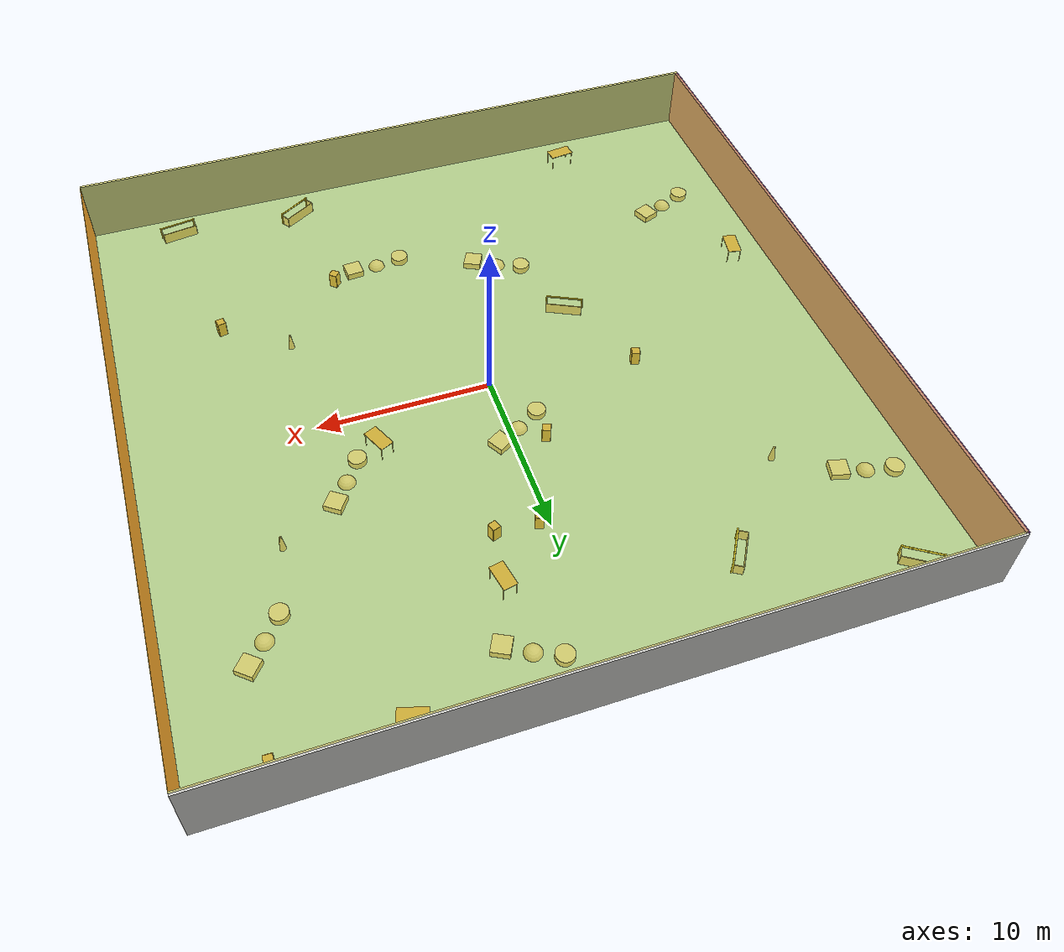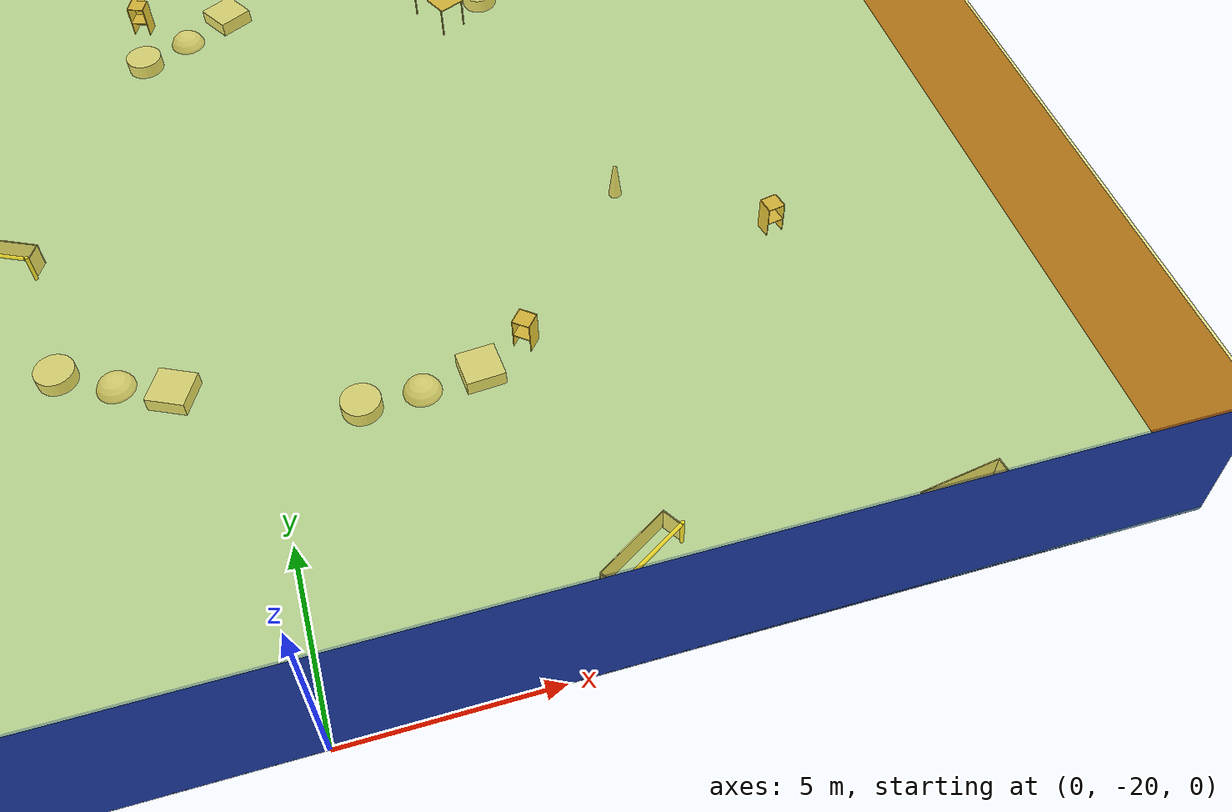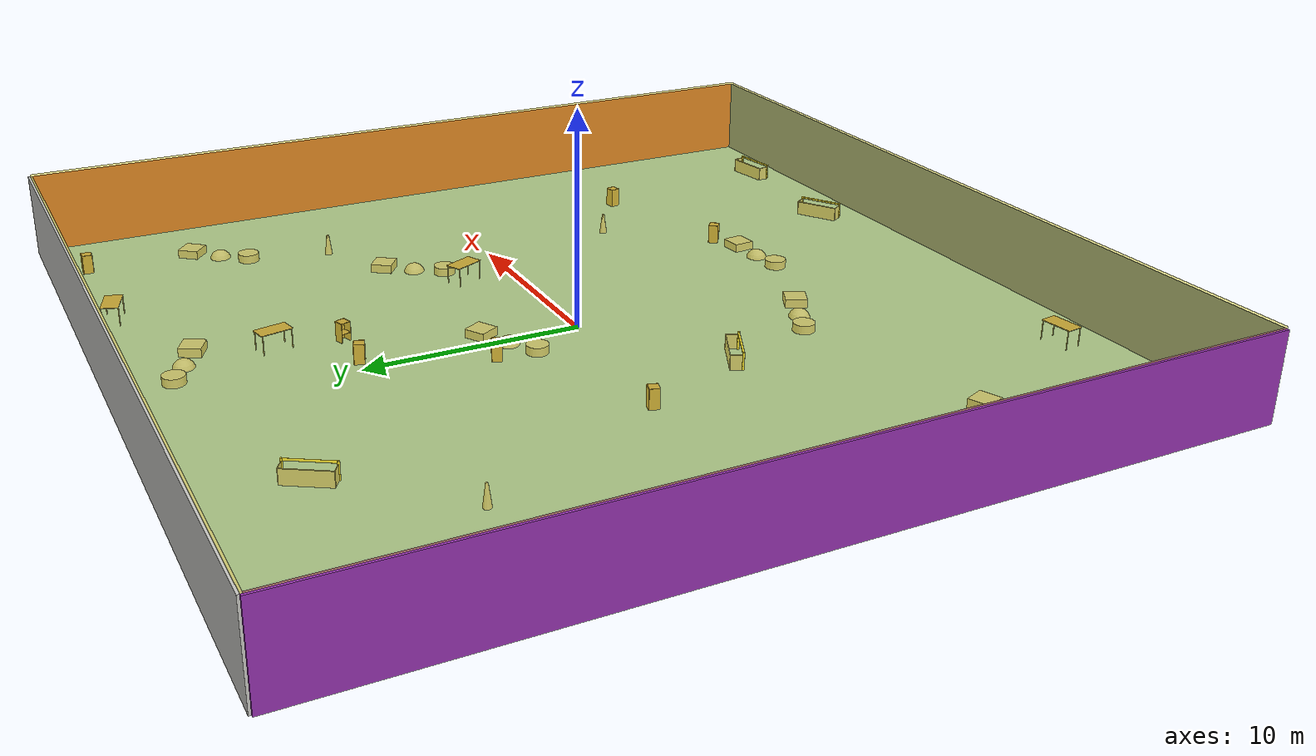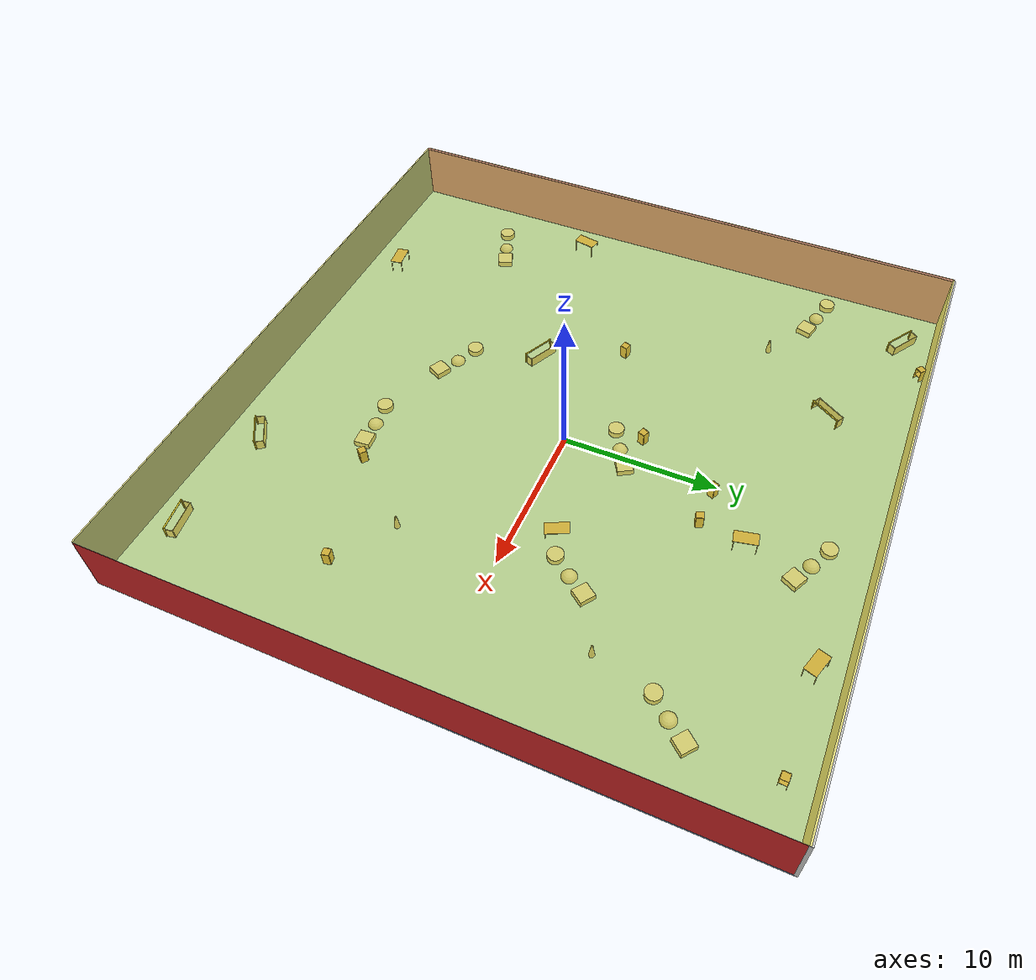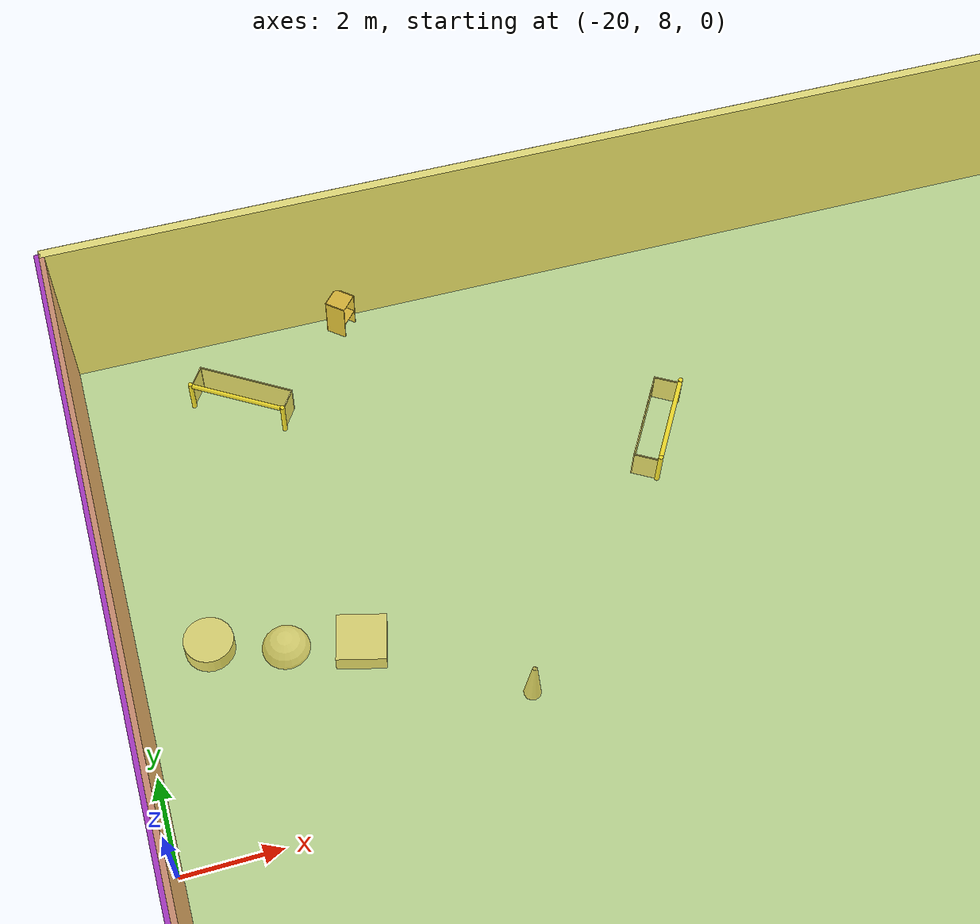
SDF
<sdf version="1.4">
 <world name="default">
  <physics type="ode">
   <max_step_size>0.001</max_step_size>
   <real_time_factor>1</real_time_factor>
   <real_time_update_rate>1000</real_time_update_rate>
   <gravity>0 0 -9.8</gravity>
  </physics>
  <scene><ambient>0.4 0.4 0.4 1</ambient><background>0.7 0.7 0.7 1</background><shadows>1</shadows></scene>
  <model name="Surrounding">
   <static>1</static>
   <link name="Ceiling">
    <collision name="Ceiling_Collision"><geometry><box><size>40 40 0.1</size></box></geometry></collision>
    <visual name="Ceiling_Visual">
     <geometry><box><size>40 40 0.1</size></box></geometry>
     <material>
      <script>
       <uri>file://media/materials/scripts/gazebo.material</uri>
       <name>Gazebo/YellowTransparent</name>
      </script>
     </material>
    </visual>
    <pose>0 0 4.05 0 0 0</pose>
   </link>
   <link name="Wall_South">
    <collision name="Wall_South_Collision">
     <geometry><box><size>40 0 4</size></box></geometry>
     <pose>0 0 2 0 -0 0</pose>
    </collision>
    <visual name="Wall_South_Visual">
     <pose>0 0 2 0 -0 0</pose>
     <geometry><box><size>40 0 4</size></box></geometry>
     <material>
      <script><uri>file://media/materials/scripts/gazebo.material</uri><name>Gazebo/Blue</name></script>
     </material>
    </visual>
    <velocity_decay><linear>0</linear><angular>0</angular></velocity_decay>
    <pose>0 -20 0 0 -0 0</pose>
   </link>
   <link name="Wall_East">
    <collision name="Wall_21_Collision">
     <geometry><box><size>40 0 4</size></box></geometry>
     <pose>0 0 2 0 -0 0</pose>
    </collision>
    <visual name="Wall_21_Visual">
     <pose>0 0 2 0 -0 0</pose>
     <geometry><box><size>40 0 4</size></box></geometry>
     <material>
      <script><uri>file://media/materials/scripts/gazebo.material</uri><name>Gazebo/Red</name></script>
     </material>
    </visual>
    <velocity_decay><linear>0</linear><angular>0</angular></velocity_decay>
    <pose>20 0 0 0 -0 1.5708</pose>
   </link>
   <link name="Wall_North">
    <collision name="Wall_22_Collision">
     <geometry><box><size>40 0.2 4</size></box></geometry>
     <pose>0 0 2 0 -0 0</pose>
    </collision>
    <visual name="Wall_22_Visual">
     <pose>0 0 2 0 -0 0</pose>
     <geometry><box><size>40 0.2 4</size></box></geometry>
     <material>
      <script><uri>file://media/materials/scripts/gazebo.material</uri><name>Gazebo/CeilingTiled</name></script>
     </material>
    </visual>
    <velocity_decay><linear>0</linear><angular>0</angular></velocity_decay>
    <pose>0 20 0 0 -0 0</pose>
   </link>
   <link name="Wall_West">
    <collision name="Wall_23_Collision">
     <geometry><box><size>40 0.2 4</size></box></geometry>
     <pose>0 0 2 0 -0 0</pose>
    </collision>
    <visual name="Wall_23_Visual">
     <pose>0 0 2 0 -0 0</pose>
     <geometry><box><size>40 0.2 4</size></box></geometry>
     <material>
      <script><uri>file://media/materials/scripts/gazebo.material</uri><name>Gazebo/PurpleGlow</name></script>
     </material>
    </visual>
    <velocity_decay><linear>0</linear><angular>0</angular></velocity_decay>
    <pose>-20 0 0 0 0 -1.5708</pose>
   </link>
   <link name="Ground_link">
    <collision name="collision">
     <pose>0 0 .05 0 -0 0</pose>
     <geometry><box><size>40 40 0.1</size></box></geometry>
    </collision>
    <visual name="visual">
     <pose>0 0 .05 0 -0 0</pose>
     <geometry><box><size>40 40 0.1</size></box></geometry>
     <material>
      <script><uri>file://media/materials/scripts/gazebo.material</uri><name>Gazebo/SkyBlue</name></script>
     </material>
    </visual>
   </link>
   <static>1</static>
  </model>
  <spherical_coordinates>
   <surface_model>EARTH_WGS84</surface_model>
   <latitude_deg>0</latitude_deg>
   <longitude_deg>0</longitude_deg>
   <elevation>0</elevation>
   <heading_deg>0</heading_deg>
  </spherical_coordinates>
  <light name="lightball_0" type="diffuse">
   <diffuse>0.8 0.8 0.8 1</diffuse>
   <specular>0.2 0.2 0.2 1</specular>
   <attenuation>
    <range>100</range>
    <constant>0.7</constant>
    <linear>0.01</linear>
    <quadratic>0.001</quadratic>
   </attenuation>
   <direction>-0.5 0.1 -0.9</direction>
   <pose>-19.8112931699 -12.3471174352 1.54266042244 0 0 0</pose>
  </light>
  <light name="lightball_1" type="diffuse">
   <diffuse>0.8 0.8 0.8 1</diffuse>
   <specular>0.2 0.2 0.2 1</specular>
   <attenuation>
    <range>100</range>
    <constant>0.7</constant>
    <linear>0.01</linear>
    <quadratic>0.001</quadratic>
   </attenuation>
   <direction>-0.5 0.1 -0.9</direction>
   <pose>-6.931557891 -0.785672985255 1.60939052667 0 0 0</pose>
  </light>
  <light name="lightball_2" type="diffuse">
   <diffuse>0.8 0.8 0.8 1</diffuse>
   <specular>0.2 0.2 0.2 1</specular>
   <attenuation>
    <range>100</range>
    <constant>0.7</constant>
    <linear>0.01</linear>
    <quadratic>0.001</quadratic>
   </attenuation>
   <direction>-0.5 0.1 -0.9</direction>
   <pose>6.24930435053 -5.14676546822 3.22471741044 0 0 0</pose>
  </light>
  <light name="lightball_3" type="diffuse">
   <diffuse>0.8 0.8 0.8 1</diffuse>
   <specular>0.2 0.2 0.2 1</specular>
   <attenuation>
    <range>100</range>
    <constant>0.7</constant>
    <linear>0.01</linear>
    <quadratic>0.001</quadratic>
   </attenuation>
   <direction>-0.5 0.1 -0.9</direction>
   <pose>-7.78562876364 -14.2311823938 0.740889571333 0 0 0</pose>
  </light>
  <light name="lightball_4" type="diffuse">
   <diffuse>0.8 0.8 0.8 1</diffuse>
   <specular>0.2 0.2 0.2 1</specular>
   <attenuation>
    <range>100</range>
    <constant>0.7</constant>
    <linear>0.01</linear>
    <quadratic>0.001</quadratic>
   </attenuation>
   <direction>-0.5 0.1 -0.9</direction>
   <pose>11.4539937914 -19.2354112511 2.60857485822 0 0 0</pose>
  </light>
  <light name="lightball_5" type="diffuse">
   <diffuse>0.8 0.8 0.8 1</diffuse>
   <specular>0.2 0.2 0.2 1</specular>
   <attenuation>
    <range>100</range>
    <constant>0.7</constant>
    <linear>0.01</linear>
    <quadratic>0.001</quadratic>
   </attenuation>
   <direction>-0.5 0.1 -0.9</direction>
   <pose>-17.7053203632 10.0136013086 2.20291931713 0 0 0</pose>
  </light>
  <light name="lightball_6" type="diffuse">
   <diffuse>0.8 0.8 0.8 1</diffuse>
   <specular>0.2 0.2 0.2 1</specular>
   <attenuation>
    <range>100</range>
    <constant>0.7</constant>
    <linear>0.01</linear>
    <quadratic>0.001</quadratic>
   </attenuation>
   <direction>-0.5 0.1 -0.9</direction>
   <pose>4.10701436843 -2.36665118086 0.692865983168 0 0 0</pose>
  </light>
  <light name="lightball_7" type="diffuse">
   <diffuse>0.8 0.8 0.8 1</diffuse>
   <specular>0.2 0.2 0.2 1</specular>
   <attenuation>
    <range>100</range>
    <constant>0.7</constant>
    <linear>0.01</linear>
    <quadratic>0.001</quadratic>
   </attenuation>
   <direction>-0.5 0.1 -0.9</direction>
   <pose>-1.81097225094 -17.0038567095 1.79766830726 0 0 0</pose>
  </light>
  <light name="lightball_8" type="diffuse">
   <diffuse>0.8 0.8 0.8 1</diffuse>
   <specular>0.2 0.2 0.2 1</specular>
   <attenuation>
    <range>100</range>
    <constant>0.7</constant>
    <linear>0.01</linear>
    <quadratic>0.001</quadratic>
   </attenuation>
   <direction>-0.5 0.1 -0.9</direction>
   <pose>-13.9218556418 16.90249561 1.76272127357 0 0 0</pose>
  </light>
  <light name="lightball_9" type="diffuse">
   <diffuse>0.8 0.8 0.8 1</diffuse>
   <specular>0.2 0.2 0.2 1</specular>
   <attenuation>
    <range>100</range>
    <constant>0.7</constant>
    <linear>0.01</linear>
    <quadratic>0.001</quadratic>
   </attenuation>
   <direction>-0.5 0.1 -0.9</direction>
   <pose>-6.44497664084 -2.71739411514 2.19772203722 0 0 0</pose>
  </light>
  <light name="lightball_10" type="diffuse">
   <diffuse>0.8 0.8 0.8 1</diffuse>
   <specular>0.2 0.2 0.2 1</specular>
   <attenuation>
    <range>100</range>
    <constant>0.7</constant>
    <linear>0.01</linear>
    <quadratic>0.001</quadratic>
   </attenuation>
   <direction>-0.5 0.1 -0.9</direction>
   <pose>8.84004179469 15.712994669 1.7242139642 0 0 0</pose>
  </light>
  <light name="lightball_11" type="diffuse">
   <diffuse>0.8 0.8 0.8 1</diffuse>
   <specular>0.2 0.2 0.2 1</specular>
   <attenuation>
    <range>100</range>
    <constant>0.7</constant>
    <linear>0.01</linear>
    <quadratic>0.001</quadratic>
   </attenuation>
   <direction>-0.5 0.1 -0.9</direction>
   <pose>16.5927628996 18.747051674 2.65038603471 0 0 0</pose>
  </light>
  <light name="lightball_12" type="diffuse">
   <diffuse>0.8 0.8 0.8 1</diffuse>
   <specular>0.2 0.2 0.2 1</specular>
   <attenuation>
    <range>100</range>
    <constant>0.7</constant>
    <linear>0.01</linear>
    <quadratic>0.001</quadratic>
   </attenuation>
   <direction>-0.5 0.1 -0.9</direction>
   <pose>-18.5173151046 -4.84538939786 2.72664107131 0 0 0</pose>
  </light>
  <include><uri>model://table</uri><pose>-17.7593512054 -5.78041254641 0 0 0 1.38322506304</pose></include>
  <include>
   <uri>model://textured_shapes</uri>
   <pose>-17.0400405087 11.9961092672 0 0 0 1.31222335812</pose>
  </include>
  <include>
   <uri>model://robocup_3Dsim_goal</uri>
   <pose>-16.7408617263 17.7546434674 0 0 0 0.992802630707</pose>
  </include>
  <include>
   <uri>model://textured_shapes</uri>
   <pose>-15.5880079518 -11.4216624431 0 0 0 1.95099387495</pose>
  </include>
  <include><uri>model://cabinet</uri><pose>-13.9837912596 19.6208410551 0 0 0 2.41912587527</pose></include>
  <include><uri>model://table</uri><pose>-10.7966958167 -17.8329162336 0 0 0 0.128835828044</pose></include>
  <include>
   <uri>model://construction_cone</uri>
   <pose>-12.6533735788 9.71792246589 0 0 0 1.15707198367</pose>
  </include>
  <include><uri>model://cabinet</uri><pose>-8.462425228 0.85424727999 0 0 0 1.28829321708</pose></include>
  <include>
   <uri>model://robocup_3Dsim_goal</uri>
   <pose>-8.02416341983 14.6312671626 0 0 0 2.5833569834</pose>
  </include>
  <include>
   <uri>model://robocup_3Dsim_goal</uri>
   <pose>-6.17754429431 -4.58994318835 0 0 0 1.11819498691</pose>
  </include>
  <include>
   <uri>model://textured_shapes</uri>
   <pose>-3.48669876793 -9.33414498489 0 0 0 1.10974489583</pose>
  </include>
  <include><uri>model://cabinet</uri><pose>-1.6893721577 4.61591681971 0 0 0 1.19453598258</pose></include>
  <include>
   <uri>model://textured_shapes</uri>
   <pose>-0.483381897511 3.54444892017 0 0 0 2.09869047156</pose>
  </include>
  <include><uri>model://cabinet</uri><pose>0.588463634299 9.8927139876 0 0 0 1.18989845407</pose></include>
  <include>
   <uri>model://textured_shapes</uri>
   <pose>3.64072617609 -11.5924620786 0 0 0 1.65069556445</pose>
  </include>
  <include><uri>model://cabinet</uri><pose>2.99004020819 9.81936088511 0 0 0 0.336087109473</pose></include>
  <include><uri>model://table</uri><pose>3.4962764695 12.7360396639 0 0 0 1.76781983444</pose></include>
  <include>
   <uri>model://textured_shapes</uri>
   <pose>3.32169606639 16.6389213041 0 0 0 1.09723366761</pose>
  </include>
  <include>
   <uri>model://robocup_3Dsim_goal</uri>
   <pose>7.4531624176 -17.9943095698 0 0 0 2.12870944544</pose>
  </include>
  <include><uri>model://cabinet</uri><pose>6.43646502012 -10.8147193454 0 0 0 0.88324180882</pose></include>
  <include><uri>model://table</uri><pose>7.09429895981 2.53189356881 0 0 0 2.00625559775</pose></include>
  <include>
   <uri>model://construction_cone</uri>
   <pose>10.0744091096 -6.38464228167 0 0 0 2.25867952588</pose>
  </include>
  <include>
   <uri>model://textured_shapes</uri>
   <pose>9.30645492763 4.22164747553 0 0 0 2.52147615934</pose>
  </include>
  <include><uri>model://table</uri><pose>9.62002337765 18.3429796801 0 0 0 2.82517503091</pose></include>
  <include><uri>model://cabinet</uri><pose>13.689091554 -8.82079242091 0 0 0 1.76365065015</pose></include>
  <include>
   <uri>model://construction_cone</uri>
   <pose>13.3287746308 7.22125875393 0 0 0 2.32224996315</pose>
  </include>
  <include>
   <uri>model://robocup_3Dsim_goal</uri>
   <pose>14.8705093884 -18.5681644098 0 0 0 1.7252824048</pose>
  </include>
  <include>
   <uri>model://textured_shapes</uri>
   <pose>15.1824802779 12.1623401214 0 0 0 2.45328087335</pose>
  </include>
  <include><uri>model://cabinet</uri><pose>16.0959602943 18.3499226531 0 0 0 3.10646344085</pose></include>
 </world>
</sdf>

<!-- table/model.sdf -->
<sdf version="1.5">
  <model name="table">
    <static>true</static>
    <link name="link">
      <collision name="surface">
        <pose>0 0 1.0 0 0 0</pose>
        <geometry>
          <box>
            <size>1.5 0.8 0.03</size>
          </box>
        </geometry>
        <surface>
          <friction>
            <ode>
              <mu>0.6</mu>
              <mu2>0.6</mu2>
            </ode>
          </friction>
        </surface>
      </collision>
      <visual name="visual1">
        <pose>0 0 1.0 0 0 0</pose>
        <geometry>
          <box>
            <size>1.5 0.8 0.03</size>
          </box>
        </geometry>
        <material>
          <script>
            <uri>model://media/materials/scripts/gazebo.material</uri>
            <name>Gazebo/Wood</name>
          </script>
        </material>
      </visual>
      <collision name="front_left_leg">
        <pose>0.68 0.38 0.5 0 0 0</pose>
        <geometry>
          <cylinder>
            <radius>0.02</radius>
            <length>1.0</length>
          </cylinder>
        </geometry>
      </collision>
      <visual name="front_left_leg">
        <pose>0.68 0.38 0.5 0 0 0</pose>
        <geometry>
          <cylinder>
            <radius>0.02</radius>
            <length>1.0</length>
          </cylinder>
        </geometry>
        <material>
          <script>
            <uri>model://media/materials/scripts/gazebo.material</uri>
            <name>Gazebo/Grey</name>
          </script>
        </material>
      </visual>
      <collision name="front_right_leg">
        <pose>0.68 -0.38 0.5 0 0 0</pose>
        <geometry>
          <cylinder>
            <radius>0.02</radius>
            <length>1.0</length>
          </cylinder>
        </geometry>
      </collision>
      <visual name="front_right_leg">
        <pose>0.68 -0.38 0.5 0 0 0</pose>
        <geometry>
          <cylinder>
            <radius>0.02</radius>
            <length>1.0</length>
          </cylinder>
        </geometry>
        <material>
          <script>
            <uri>model://media/materials/scripts/gazebo.material</uri>
            <name>Gazebo/Grey</name>
          </script>
        </material>
      </visual>
      <collision name="back_right_leg">
        <pose>-0.68 -0.38 0.5 0 0 0</pose>
        <geometry>
          <cylinder>
            <radius>0.02</radius>
            <length>1.0</length>
          </cylinder>
        </geometry>
      </collision>
      <visual name="back_right_leg">
        <pose>-0.68 -0.38 0.5 0 0 0</pose>
        <geometry>
          <cylinder>
            <radius>0.02</radius>
            <length>1.0</length>
          </cylinder>
        </geometry>
        <material>
          <script>
            <uri>model://media/materials/scripts/gazebo.material</uri>
            <name>Gazebo/Grey</name>
          </script>
        </material>
      </visual>
      <collision name="back_left_leg">
        <pose>-0.68 0.38 0.5 0 0 0</pose>
        <geometry>
          <cylinder>
            <radius>0.02</radius>
            <length>1.0</length>
          </cylinder>
        </geometry>
      </collision>
      <visual name="back_left_leg">
        <pose>-0.68 0.38 0.5 0 0 0</pose>
        <geometry>
          <cylinder>
            <radius>0.02</radius>
            <length>1.0</length>
          </cylinder>
        </geometry>
        <material>
          <script>
            <uri>model://media/materials/scripts/gazebo.material</uri>
            <name>Gazebo/Grey</name>
          </script>
        </material>
      </visual>
    </link>
  </model>
</sdf>

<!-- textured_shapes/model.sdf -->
<sdf version="1.6">
  <model name="textured_shapes">
    <pose>0 0 0.5 0 0 0</pose>
    <link name="box">
      <pose>0 -1.5 0 0 0 0</pose>
      <collision name="collision">
        <geometry>
          <box>
            <size>1 1 1</size>
          </box>
        </geometry>
      </collision>
      <visual name="visual">
        <geometry>
          <box>
            <size>1 1 1</size>
          </box>
        </geometry>
        <material>
          <script>
            <uri>model://../model_source/models/textured_shapes/materials/scripts</uri>
            <uri>model://../model_source/models/textured_shapes/materials/textures</uri>
            <name>TexturedShape/Squares</name>
          </script>
        </material>
      </visual>
    </link>
    <link name="sphere">
      <collision name="collision">
        <geometry>
          <sphere>
            <radius>0.5</radius>
          </sphere>
        </geometry>
      </collision>
      <visual name="visual">
        <geometry>
          <sphere>
            <radius>0.5</radius>
          </sphere>
        </geometry>
        <material>
          <script>
            <uri>model://../model_source/models/textured_shapes/materials/scripts</uri>
            <uri>model://../model_source/models/textured_shapes/materials/textures</uri>
            <name>TexturedShape/Squares</name>
          </script>
        </material>
      </visual>
    </link>
    <link name="cylinder">
      <pose>0 1.5 0 0 0 0</pose>
      <collision name="collision">
        <geometry>
          <cylinder>
            <radius>0.5</radius>
            <length>1</length>
          </cylinder>
        </geometry>
      </collision>
      <visual name="visual">
        <geometry>
          <cylinder>
            <radius>0.5</radius>
            <length>1</length>
          </cylinder>
        </geometry>
        <material>
          <script>
            <uri>model://../model_source/models/textured_shapes/materials/scripts</uri>
            <uri>model://../model_source/models/textured_shapes/materials/textures</uri>
            <name>TexturedShape/Squares</name>
          </script>
        </material>
      </visual>
    </link>
  </model>
</sdf>

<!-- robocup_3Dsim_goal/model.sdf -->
<sdf version="1.5">
  <model name="robocup_3d_goal">
    <static>true</static>
    <link name="left_post">
      <pose>0 1.05 0.45 0 0 0</pose>
      <collision name="collision">
        <geometry>
          <cylinder>
            <radius>0.05</radius>
            <length>0.9</length>
          </cylinder>
        </geometry>
      </collision>
      <visual name="visual">
        <geometry>
          <cylinder>
            <radius>0.05</radius>
            <length>0.9</length>
          </cylinder>
        </geometry>
        <material>
          <script>
            <uri>file://media/materials/scripts/gazebo.material</uri>
            <name>Gazebo/ZincYellow</name>
          </script>
        </material>
      </visual>
    </link>
    <link name="left_support_horiz_lower">
      <pose>0.30 1.05 0.01 0 0 0</pose>
      <collision name="collision">
        <geometry>
          <box>
            <size>0.50 0.02 0.02</size>
          </box>
        </geometry>
      </collision>
      <visual name="visual">
        <geometry>
          <box>
            <size>0.50 0.02 0.02</size>
          </box>
        </geometry>
        <material>
          <script>
            <uri>file://media/materials/scripts/gazebo.material</uri>
            <name>Gazebo/White</name>
          </script>
        </material>
      </visual>
    </link>
    <link name="left_support_horiz_upper">
      <pose>0.30 1.05 0.79 0 0 0</pose>
      <collision name="collision">
        <geometry>
          <box>
            <size>0.50 0.02 0.02</size>
          </box>
        </geometry>
      </collision>
      <visual name="visual">
        <geometry>
          <box>
            <size>0.50 0.02 0.02</size>
          </box>
        </geometry>
        <material>
          <script>
            <uri>file://media/materials/scripts/gazebo.material</uri>
            <name>Gazebo/White</name>
          </script>
        </material>
      </visual>
    </link>
    <link name="left_support_vertical">
      <pose>0.56 1.05 0.4 0 1.5708 0</pose>
      <collision name="collision">
        <geometry>
          <box>
            <size>0.80 0.02 0.02</size>
          </box>
        </geometry>
      </collision>
      <visual name="visual">
        <geometry>
          <box>
            <size>0.80 0.02 0.02</size>
          </box>
        </geometry>
        <material>
          <script>
            <uri>file://media/materials/scripts/gazebo.material</uri>
            <name>Gazebo/White</name>
          </script>
        </material>
      </visual>
    </link>
    <link name="right_support_horiz_lower">
      <pose>0.30 -1.05 0.01 0 0 0</pose>
      <collision name="collision">
        <geometry>
          <box>
            <size>0.50 0.02 0.02</size>
          </box>
        </geometry>
      </collision>
      <visual name="visual">
        <geometry>
          <box>
            <size>0.50 0.02 0.02</size>
          </box>
        </geometry>
        <material>
          <script>
            <uri>file://media/materials/scripts/gazebo.material</uri>
            <name>Gazebo/White</name>
          </script>
        </material>
      </visual>
    </link>
    <link name="right_support_horiz_upper">
      <pose>0.30 -1.05 0.79 0 0 0</pose>
      <collision name="collision">
        <geometry>
          <box>
            <size>0.50 0.02 0.02</size>
          </box>
        </geometry>
      </collision>
      <visual name="visual">
        <geometry>
          <box>
            <size>0.50 0.02 0.02</size>
          </box>
        </geometry>
        <material>
          <script>
            <uri>file://media/materials/scripts/gazebo.material</uri>
            <name>Gazebo/White</name>
          </script>
        </material>
      </visual>
    </link>
    <link name="right_support_vertical">
      <pose>0.56 -1.05 0.4 0 1.5708 0</pose>
      <collision name="collision">
        <geometry>
          <box>
            <size>0.80 0.02 0.02</size>
          </box>
        </geometry>
      </collision>
      <visual name="visual">
        <geometry>
          <box>
            <size>0.80 0.02 0.02</size>
          </box>
        </geometry>
        <material>
          <script>
            <uri>file://media/materials/scripts/gazebo.material</uri>
            <name>Gazebo/White</name>
          </script>
        </material>
      </visual>
    </link>
    <link name="center_support_horiz_lower">
      <pose>0.56 0 0.01 0 1.5708 0</pose>
      <collision name="collision">
        <geometry>
          <box>
            <size>0.02 2.08 0.02</size>
          </box>
        </geometry>
      </collision>
      <visual name="visual">
        <geometry>
          <box>
            <size>0.02 2.08 0.02</size>
          </box>
        </geometry>
        <material>
          <script>
            <uri>file://media/materials/scripts/gazebo.material</uri>
            <name>Gazebo/White</name>
          </script>
        </material>
      </visual>
    </link>
    <link name="center_support_horiz_upper">
      <pose>0.56 0 0.79 0 1.5708 0</pose>
      <collision name="collision">
        <geometry>
          <box>
            <size>0.02 2.08 0.02</size>
          </box>
        </geometry>
      </collision>
      <visual name="visual">
        <geometry>
          <box>
            <size>0.02 2.08 0.02</size>
          </box>
        </geometry>
        <material>
          <script>
            <uri>file://media/materials/scripts/gazebo.material</uri>
            <name>Gazebo/White</name>
          </script>
        </material>
      </visual>
    </link>
    <link name="right_post">
      <pose>0 -1.05 0.45 0 0 0</pose>
      <collision name="collision">
        <geometry>
          <cylinder>
            <radius>0.05</radius>
            <length>0.9</length>
          </cylinder>
        </geometry>
      </collision>
      <visual name="visual">
        <geometry>
          <cylinder>
            <radius>0.05</radius>
            <length>0.9</length>
          </cylinder>
        </geometry>
        <material>
          <script>
            <uri>file://media/materials/scripts/gazebo.material</uri>
            <name>Gazebo/ZincYellow</name>
          </script>
        </material>
      </visual>
    </link>
    <link name="crossbar">
      <pose>0 0 0.85 1.57 1.57 0</pose>
      <collision name="collision">
        <geometry>
          <cylinder>
            <radius>0.05</radius>
            <length>2.0</length>
          </cylinder>
        </geometry>
      </collision>
      <visual name="visual">
        <geometry>
          <cylinder>
            <radius>0.05</radius>
            <length>2.0</length>
          </cylinder>
        </geometry>
        <material>
          <script>
            <uri>file://media/materials/scripts/gazebo.material</uri>
            <name>Gazebo/ZincYellow</name>
          </script>
        </material>
      </visual>
    </link>
    <link name="center_net">
      <pose>0.56 0 0.40 0 0 0</pose>
      <collision name="collision">
        <geometry>
          <box>
            <size>0.01 2.1 0.80</size>
          </box>
        </geometry>
      </collision>
      <visual name="visual">
        <geometry>
          <box>
            <size>0.01 2.1 0.80</size>
          </box>
        </geometry>
        <material>
          <script>
            <uri>model://../model_source/models/robocup09_spl_field/materials/scripts/</uri>
            <uri>model://../model_source/models/robocup09_spl_field/materials/textures/</uri>
            <name>RoboCup/Net</name>
          </script>
        </material>
      </visual>
    </link>
    <link name="left_net">
      <pose>0.30 1.05 0.40 0 0 0</pose>
      <collision name="collision">
        <geometry>
          <box>
            <size>0.50 0.01 0.76</size>
          </box>
        </geometry>
      </collision>
      <visual name="visual">
        <geometry>
          <box>
            <size>0.50 0.01 0.76</size>
          </box>
        </geometry>
        <material>
          <script>
            <uri>model://../model_source/models/robocup09_spl_field/materials/scripts/</uri>
            <uri>model://../model_source/models/robocup09_spl_field/materials/textures/</uri>
            <name>RoboCup/Net</name>
          </script>
        </material>
      </visual>
    </link>
    <link name="right_net">
      <pose>0.30 -1.05 0.40 0 0 0</pose>
      <collision name="collision">
        <geometry>
          <box>
            <size>0.50 0.01 0.76</size>
          </box>
        </geometry>
      </collision>
      <visual name="visual">
        <geometry>
          <box>
            <size>0.50 0.01 0.76</size>
          </box>
        </geometry>
        <material>
          <script>
            <uri>model://../model_source/models/robocup09_spl_field/materials/scripts/</uri>
            <uri>model://../model_source/models/robocup09_spl_field/materials/textures/</uri>
            <name>RoboCup/Net</name>
          </script>
        </material>
      </visual>
    </link>
  </model>
</sdf>

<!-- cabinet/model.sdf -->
<sdf version="1.5">
  <model name="cabinet">
    <static>true</static>
    <link name="cabinet_bottom_plate">
      <inertial>
        <pose>0 0 -1 0 0 0</pose>
        <inertia>
          <ixx>2.050000</ixx>
          <ixy>0</ixy>
          <ixz>0</ixz>
          <iyy>2.050000</iyy>
          <iyz>0</iyz>
          <izz>2.050000</izz>
        </inertia>
        <mass>25.000000</mass>
      </inertial>
      <collision name="cabinet_bottom_plate_geom">
        <pose>0 0 0.010000 0 0 0</pose>
        <geometry>
          <box>
            <size>0.450000 0.450000 0.020000</size>
          </box>
        </geometry>
      </collision>
      <visual name="cabinet_bottom_plate_geom_visual">
        <pose>0 0 0.010000 0 0 0</pose>
        <geometry>
          <box>
            <size>0.450000 0.450000 0.020000</size>
          </box>
        </geometry>
        <material>
          <script>
            <uri>model://media/materials/scripts/gazebo.material</uri>
            <name>Gazebo/Wood</name>
          </script>
        </material>
      </visual>
      <collision name="cabinet_bottom_plate_geom_cabinet_back_plate">
        <pose>0.235000 0 0.510000 0 0 0</pose>
        <geometry>
          <box>
            <size>0.020000 0.450000 1.020000</size>
          </box>
        </geometry>
      </collision>
      <visual name="cabinet_bottom_plate_geom_cabinet_back_plate_visual">
        <pose>0.235000 0 0.510000 0 0 0</pose>
        <geometry>
          <box>
            <size>0.020000 0.450000 1.020000</size>
          </box>
        </geometry>
        <material>
          <script>
            <uri>model://media/materials/scripts/gazebo.material</uri>
            <name>Gazebo/Wood</name>
          </script>
        </material>
      </visual>
      <collision name="cabinet_bottom_plate_geom_cabinet_left_plate">
        <pose>0 0.235000 0.510000 0 0 0</pose>
        <geometry>
          <box>
            <size>0.450000 0.020000 1.020000</size>
          </box>
        </geometry>
      </collision>
      <visual name="cabinet_bottom_plate_geom_cabinet_left_plate_visual">
        <pose>0 0.235000 0.510000 0 0 0</pose>
        <geometry>
          <box>
            <size>0.450000 0.020000 1.020000</size>
          </box>
        </geometry>
        <material>
          <script>
            <uri>model://media/materials/scripts/gazebo.material</uri>
            <name>Gazebo/Wood</name>
          </script>
        </material>
      </visual>
      <collision name="cabinet_bottom_plate_geom_cabinet_middle_plate">
        <pose>0 0 0.510000 0 0 0</pose>
        <geometry>
          <box>
            <size>0.450000 0.450000 0.020000</size>
          </box>
        </geometry>
      </collision>
      <visual name="cabinet_bottom_plate_geom_cabinet_middle_plate_visual">
        <pose>0 0 0.510000 0 0 0</pose>
        <geometry>
          <box>
            <size>0.450000 0.450000 0.020000</size>
          </box>
        </geometry>
        <material>
          <script>
            <uri>model://media/materials/scripts/gazebo.material</uri>
            <name>Gazebo/Wood</name>
          </script>
        </material>
      </visual>
      <collision name="cabinet_bottom_plate_geom_cabinet_right_plate">
        <pose>0 -0.235000 0.510000 0 0 0</pose>
        <geometry>
          <box>
            <size>0.450000 0.020000 1.020000</size>
          </box>
        </geometry>
      </collision>
      <visual name="cabinet_bottom_plate_geom_cabinet_right_plate_visual">
        <pose>0 -0.235000 0.510000 0 0 0</pose>
        <geometry>
          <box>
            <size>0.450000 0.020000 1.020000</size>
          </box>
        </geometry>
        <material>
          <script>
            <uri>model://media/materials/scripts/gazebo.material</uri>
            <name>Gazebo/Wood</name>
          </script>
        </material>
      </visual>
      <collision name="cabinet_bottom_plate_geom_cabinet_top_plate">
        <pose>0 0 1.010000 0 0 0</pose>
        <geometry>
          <box>
            <size>0.450000 0.450000 0.020000</size>
          </box>
        </geometry>
      </collision>
      <visual name="cabinet_bottom_plate_geom_cabinet_top_plate_visual">
        <pose>0 0 1.010000 0 0 0</pose>
        <geometry>
          <box>
            <size>0.450000 0.450000 0.020000</size>
          </box>
        </geometry>
        <material>
          <script>
            <uri>model://media/materials/scripts/gazebo.material</uri>
            <name>Gazebo/Wood</name>
          </script>
        </material>
      </visual>
    </link>
  </model>
</sdf>

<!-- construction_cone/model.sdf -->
<sdf version="1.5">
  <model name="Construction Cone">
    <link name="link">
      <collision name="collision">
        <geometry>
          <mesh>
            <scale>10 10 10</scale>
            <uri>file://isr-testbed/construction_cone/meshes/construction_cone.dae</uri>
          </mesh>
        </geometry>
      </collision>
      <visual name="visual">
        <geometry>
          <mesh>
            <scale>10 10 10</scale>
            <uri>file://isr-testbed/construction_cone/meshes/construction_cone.dae</uri>
          </mesh>
        </geometry>
      </visual>
    </link>
  </model>
</sdf>
